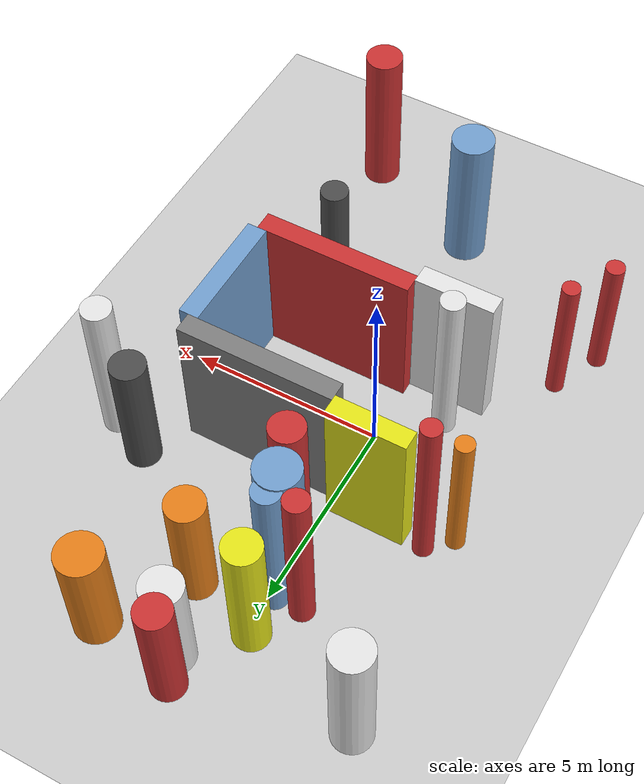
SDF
<?xml version='1.0'?>
<sdf version='1.6'>
  <world name='routeA_rl_v1__dense_recovery__rl_train__cul_de_sac_trap__000074'>
    <!-- Sun light -->
    <light name='sun' type='directional'>
      <cast_shadows>1</cast_shadows>
      <pose>0 0 10 0 0 0</pose>
      <diffuse>0.8 0.8 0.8 1</diffuse>
      <specular>0.2 0.2 0.2 1</specular>
      <attenuation>
        <range>1000</range>
        <constant>0.9</constant>
        <linear>0.01</linear>
        <quadratic>0.001</quadratic>
      </attenuation>
      <direction>-0.5 0.1 -0.9</direction>
    </light>

    <!-- Ground plane -->
    <model name='ground_plane'>
      <static>1</static>
      <link name='link'>
        <collision name='collision'>
          <geometry>
            <plane>
              <normal>0 0 1</normal>
              <size>100 100</size>
            </plane>
          </geometry>
          <surface>
            <contact>
              <collide_bitmask>65535</collide_bitmask>
              <ode/>
            </contact>
            <friction>
              <ode>
                <mu>100</mu>
                <mu2>50</mu2>
              </ode>
              <torsional><ode/></torsional>
            </friction>
            <bounce/>
          </surface>
          <max_contacts>10</max_contacts>
        </collision>
        <visual name='visual'>
          <cast_shadows>0</cast_shadows>
          <geometry>
            <plane>
              <normal>0 0 1</normal>
              <size>100 100</size>
            </plane>
          </geometry>
          <material>
            <script>
              <uri>file://media/materials/scripts/gazebo.material</uri>
              <n>Gazebo/Grey</n>
            </script>
          </material>
        </visual>
      </link>
    </model>

    <!-- Environment -->
    <magnetic_field>6e-06 2.3e-05 -4.2e-05</magnetic_field>
    <atmosphere type='adiabatic'/>
    <physics name='default_physics' default='0' type='ode'>
      <gravity>0 0 -9.8</gravity>
      <max_step_size>0.004</max_step_size>
      <real_time_factor>1</real_time_factor>
      <real_time_update_rate>250</real_time_update_rate>
    </physics>
    <scene>
      <ambient>0.4 0.4 0.4 1</ambient>
      <background>0.7 0.7 0.7 1</background>
      <shadows>1</shadows>
    </scene>
    <wind/>
    <spherical_coordinates>
      <surface_model>EARTH_WGS84</surface_model>
      <latitude_deg>0</latitude_deg>
      <longitude_deg>0</longitude_deg>
      <elevation>0</elevation>
      <heading_deg>0</heading_deg>
    </spherical_coordinates>

    <!-- ============ OBSTACLES (26) ============ -->
    <model name='trap_side_l'>
      <static>1</static>
      <link name='link'>
        <visual name='visual'>
          <geometry>
            <box>
              <size>4.0000 0.5000 4.0000</size>
            </box>
          </geometry>
          <material>
            <script>
              <n>Gazebo/Red</n>
              <uri>file://media/materials/scripts/gazebo.material</uri>
            </script>
            <ambient>0.8 0.2 0.2 1</ambient>
          </material>
        </visual>
        <collision name='collision'>
          <geometry>
            <box>
              <size>4.0000 0.5000 4.0000</size>
            </box>
          </geometry>
          <max_contacts>10</max_contacts>
          <surface>
            <contact><ode/></contact>
            <bounce/>
            <friction>
              <ode><mu>1</mu><mu2>1</mu2></ode>
              <torsional><ode/></torsional>
            </friction>
          </surface>
        </collision>
      </link>
      <pose>2.0000 -1.7500 2.0000 0 0 0.0000</pose>
    </model>

    <model name='trap_side_r'>
      <static>1</static>
      <link name='link'>
        <visual name='visual'>
          <geometry>
            <box>
              <size>4.0000 0.5000 4.0000</size>
            </box>
          </geometry>
          <material>
            <script>
              <n>Gazebo/Grey</n>
              <uri>file://media/materials/scripts/gazebo.material</uri>
            </script>
            <ambient>0.5 0.5 0.5 1</ambient>
          </material>
        </visual>
        <collision name='collision'>
          <geometry>
            <box>
              <size>4.0000 0.5000 4.0000</size>
            </box>
          </geometry>
          <max_contacts>10</max_contacts>
          <surface>
            <contact><ode/></contact>
            <bounce/>
            <friction>
              <ode><mu>1</mu><mu2>1</mu2></ode>
              <torsional><ode/></torsional>
            </friction>
          </surface>
        </collision>
      </link>
      <pose>2.0000 1.7500 2.0000 0 0 0.0000</pose>
    </model>

    <model name='trap_back'>
      <static>1</static>
      <link name='link'>
        <visual name='visual'>
          <geometry>
            <box>
              <size>0.5000 3.0000 4.0000</size>
            </box>
          </geometry>
          <material>
            <script>
              <n>Gazebo/Blue</n>
              <uri>file://media/materials/scripts/gazebo.material</uri>
            </script>
            <ambient>0.447 0.624 0.812 1</ambient>
          </material>
        </visual>
        <collision name='collision'>
          <geometry>
            <box>
              <size>0.5000 3.0000 4.0000</size>
            </box>
          </geometry>
          <max_contacts>10</max_contacts>
          <surface>
            <contact><ode/></contact>
            <bounce/>
            <friction>
              <ode><mu>1</mu><mu2>1</mu2></ode>
              <torsional><ode/></torsional>
            </friction>
          </surface>
        </collision>
      </link>
      <pose>4.0000 0.0000 2.0000 0 0 0.0000</pose>
    </model>

    <model name='trap_funnel_l'>
      <static>1</static>
      <link name='link'>
        <visual name='visual'>
          <geometry>
            <box>
              <size>2.0000 0.5000 4.0000</size>
            </box>
          </geometry>
          <material>
            <script>
              <n>Gazebo/White</n>
              <uri>file://media/materials/scripts/gazebo.material</uri>
            </script>
            <ambient>0.9 0.9 0.9 1</ambient>
          </material>
        </visual>
        <collision name='collision'>
          <geometry>
            <box>
              <size>2.0000 0.5000 4.0000</size>
            </box>
          </geometry>
          <max_contacts>10</max_contacts>
          <surface>
            <contact><ode/></contact>
            <bounce/>
            <friction>
              <ode><mu>1</mu><mu2>1</mu2></ode>
              <torsional><ode/></torsional>
            </friction>
          </surface>
        </collision>
      </link>
      <pose>-1.0000 -2.1000 2.0000 0 0 0.0000</pose>
    </model>

    <model name='trap_funnel_r'>
      <static>1</static>
      <link name='link'>
        <visual name='visual'>
          <geometry>
            <box>
              <size>2.0000 0.5000 4.0000</size>
            </box>
          </geometry>
          <material>
            <script>
              <n>Gazebo/Yellow</n>
              <uri>file://media/materials/scripts/gazebo.material</uri>
            </script>
            <ambient>0.9 0.9 0.1 1</ambient>
          </material>
        </visual>
        <collision name='collision'>
          <geometry>
            <box>
              <size>2.0000 0.5000 4.0000</size>
            </box>
          </geometry>
          <max_contacts>10</max_contacts>
          <surface>
            <contact><ode/></contact>
            <bounce/>
            <friction>
              <ode><mu>1</mu><mu2>1</mu2></ode>
              <torsional><ode/></torsional>
            </friction>
          </surface>
        </collision>
      </link>
      <pose>-1.0000 2.1000 2.0000 0 0 0.0000</pose>
    </model>

    <model name='trap_scatter_0'>
      <static>1</static>
      <link name='link'>
        <visual name='visual'>
          <geometry>
            <cylinder>
              <radius>0.2534</radius>
              <length>4.8954</length>
            </cylinder>
          </geometry>
          <material>
            <script>
              <n>Gazebo/Red</n>
              <uri>file://media/materials/scripts/gazebo.material</uri>
            </script>
            <ambient>0.8 0.2 0.2 1</ambient>
          </material>
        </visual>
        <collision name='collision'>
          <geometry>
            <cylinder>
              <radius>0.2534</radius>
              <length>4.8954</length>
            </cylinder>
          </geometry>
          <max_contacts>10</max_contacts>
          <surface>
            <contact><ode/></contact>
            <bounce/>
            <friction>
              <ode><mu>1</mu><mu2>1</mu2></ode>
              <torsional><ode/></torsional>
            </friction>
          </surface>
        </collision>
      </link>
      <pose>-2.4567 2.1615 2.4477 0 0 0.0000</pose>
    </model>

    <model name='trap_scatter_1'>
      <static>1</static>
      <link name='link'>
        <visual name='visual'>
          <geometry>
            <cylinder>
              <radius>0.4457</radius>
              <length>3.6659</length>
            </cylinder>
          </geometry>
          <material>
            <script>
              <n>Gazebo/Red</n>
              <uri>file://media/materials/scripts/gazebo.material</uri>
            </script>
            <ambient>0.8 0.2 0.2 1</ambient>
          </material>
        </visual>
        <collision name='collision'>
          <geometry>
            <cylinder>
              <radius>0.4457</radius>
              <length>3.6659</length>
            </cylinder>
          </geometry>
          <max_contacts>10</max_contacts>
          <surface>
            <contact><ode/></contact>
            <bounce/>
            <friction>
              <ode><mu>1</mu><mu2>1</mu2></ode>
              <torsional><ode/></torsional>
            </friction>
          </surface>
        </collision>
      </link>
      <pose>0.6173 2.8853 1.8329 0 0 0.0000</pose>
    </model>

    <model name='trap_scatter_2'>
      <static>1</static>
      <link name='link'>
        <visual name='visual'>
          <geometry>
            <cylinder>
              <radius>0.4434</radius>
              <length>3.5113</length>
            </cylinder>
          </geometry>
          <material>
            <script>
              <n>Gazebo/DarkGrey</n>
              <uri>file://media/materials/scripts/gazebo.material</uri>
            </script>
            <ambient>0.3 0.3 0.3 1</ambient>
          </material>
        </visual>
        <collision name='collision'>
          <geometry>
            <cylinder>
              <radius>0.4434</radius>
              <length>3.5113</length>
            </cylinder>
          </geometry>
          <max_contacts>10</max_contacts>
          <surface>
            <contact><ode/></contact>
            <bounce/>
            <friction>
              <ode><mu>1</mu><mu2>1</mu2></ode>
              <torsional><ode/></torsional>
            </friction>
          </surface>
        </collision>
      </link>
      <pose>4.6491 3.0811 1.7556 0 0 0.0000</pose>
    </model>

    <model name='trap_scatter_4'>
      <static>1</static>
      <link name='link'>
        <visual name='visual'>
          <geometry>
            <cylinder>
              <radius>0.4997</radius>
              <length>3.9068</length>
            </cylinder>
          </geometry>
          <material>
            <script>
              <n>Gazebo/White</n>
              <uri>file://media/materials/scripts/gazebo.material</uri>
            </script>
            <ambient>0.9 0.9 0.9 1</ambient>
          </material>
        </visual>
        <collision name='collision'>
          <geometry>
            <cylinder>
              <radius>0.4997</radius>
              <length>3.9068</length>
            </cylinder>
          </geometry>
          <max_contacts>10</max_contacts>
          <surface>
            <contact><ode/></contact>
            <bounce/>
            <friction>
              <ode><mu>1</mu><mu2>1</mu2></ode>
              <torsional><ode/></torsional>
            </friction>
          </surface>
        </collision>
      </link>
      <pose>-3.2336 6.9215 1.9534 0 0 0.0000</pose>
    </model>

    <model name='trap_scatter_5'>
      <static>1</static>
      <link name='link'>
        <visual name='visual'>
          <geometry>
            <cylinder>
              <radius>0.3459</radius>
              <length>4.4681</length>
            </cylinder>
          </geometry>
          <material>
            <script>
              <n>Gazebo/Blue</n>
              <uri>file://media/materials/scripts/gazebo.material</uri>
            </script>
            <ambient>0.447 0.624 0.812 1</ambient>
          </material>
        </visual>
        <collision name='collision'>
          <geometry>
            <cylinder>
              <radius>0.3459</radius>
              <length>4.4681</length>
            </cylinder>
          </geometry>
          <max_contacts>10</max_contacts>
          <surface>
            <contact><ode/></contact>
            <bounce/>
            <friction>
              <ode><mu>1</mu><mu2>1</mu2></ode>
              <torsional><ode/></torsional>
            </friction>
          </surface>
        </collision>
      </link>
      <pose>-0.1187 4.9088 2.2340 0 0 0.0000</pose>
    </model>

    <model name='trap_scatter_6'>
      <static>1</static>
      <link name='link'>
        <visual name='visual'>
          <geometry>
            <cylinder>
              <radius>0.3754</radius>
              <length>4.3502</length>
            </cylinder>
          </geometry>
          <material>
            <script>
              <n>Gazebo/White</n>
              <uri>file://media/materials/scripts/gazebo.material</uri>
            </script>
            <ambient>0.9 0.9 0.9 1</ambient>
          </material>
        </visual>
        <collision name='collision'>
          <geometry>
            <cylinder>
              <radius>0.3754</radius>
              <length>4.3502</length>
            </cylinder>
          </geometry>
          <max_contacts>10</max_contacts>
          <surface>
            <contact><ode/></contact>
            <bounce/>
            <friction>
              <ode><mu>1</mu><mu2>1</mu2></ode>
              <torsional><ode/></torsional>
            </friction>
          </surface>
        </collision>
      </link>
      <pose>5.7131 2.5837 2.1751 0 0 0.0000</pose>
    </model>

    <model name='trap_scatter_8'>
      <static>1</static>
      <link name='link'>
        <visual name='visual'>
          <geometry>
            <cylinder>
              <radius>0.2345</radius>
              <length>4.0217</length>
            </cylinder>
          </geometry>
          <material>
            <script>
              <n>Gazebo/Orange</n>
              <uri>file://media/materials/scripts/gazebo.material</uri>
            </script>
            <ambient>0.9 0.5 0.1 1</ambient>
          </material>
        </visual>
        <collision name='collision'>
          <geometry>
            <cylinder>
              <radius>0.2345</radius>
              <length>4.0217</length>
            </cylinder>
          </geometry>
          <max_contacts>10</max_contacts>
          <surface>
            <contact><ode/></contact>
            <bounce/>
            <friction>
              <ode><mu>1</mu><mu2>1</mu2></ode>
              <torsional><ode/></torsional>
            </friction>
          </surface>
        </collision>
      </link>
      <pose>-3.0285 1.6366 2.0108 0 0 0.0000</pose>
    </model>

    <model name='trap_scatter_9'>
      <static>1</static>
      <link name='link'>
        <visual name='visual'>
          <geometry>
            <cylinder>
              <radius>0.5450</radius>
              <length>3.9310</length>
            </cylinder>
          </geometry>
          <material>
            <script>
              <n>Gazebo/Blue</n>
              <uri>file://media/materials/scripts/gazebo.material</uri>
            </script>
            <ambient>0.447 0.624 0.812 1</ambient>
          </material>
        </visual>
        <collision name='collision'>
          <geometry>
            <cylinder>
              <radius>0.5450</radius>
              <length>3.9310</length>
            </cylinder>
          </geometry>
          <max_contacts>10</max_contacts>
          <surface>
            <contact><ode/></contact>
            <bounce/>
            <friction>
              <ode><mu>1</mu><mu2>1</mu2></ode>
              <torsional><ode/></torsional>
            </friction>
          </surface>
        </collision>
      </link>
      <pose>0.8737 -6.6522 1.9655 0 0 0.0000</pose>
    </model>

    <model name='trap_scatter_10'>
      <static>1</static>
      <link name='link'>
        <visual name='visual'>
          <geometry>
            <cylinder>
              <radius>0.4761</radius>
              <length>4.1717</length>
            </cylinder>
          </geometry>
          <material>
            <script>
              <n>Gazebo/Red</n>
              <uri>file://media/materials/scripts/gazebo.material</uri>
            </script>
            <ambient>0.8 0.2 0.2 1</ambient>
          </material>
        </visual>
        <collision name='collision'>
          <geometry>
            <cylinder>
              <radius>0.4761</radius>
              <length>4.1717</length>
            </cylinder>
          </geometry>
          <max_contacts>10</max_contacts>
          <surface>
            <contact><ode/></contact>
            <bounce/>
            <friction>
              <ode><mu>1</mu><mu2>1</mu2></ode>
              <torsional><ode/></torsional>
            </friction>
          </surface>
        </collision>
      </link>
      <pose>4.0979 -7.9911 2.0858 0 0 0.0000</pose>
    </model>

    <model name='trap_scatter_11'>
      <static>1</static>
      <link name='link'>
        <visual name='visual'>
          <geometry>
            <cylinder>
              <radius>0.4771</radius>
              <length>3.3694</length>
            </cylinder>
          </geometry>
          <material>
            <script>
              <n>Gazebo/Orange</n>
              <uri>file://media/materials/scripts/gazebo.material</uri>
            </script>
            <ambient>0.9 0.5 0.1 1</ambient>
          </material>
        </visual>
        <collision name='collision'>
          <geometry>
            <cylinder>
              <radius>0.4771</radius>
              <length>3.3694</length>
            </cylinder>
          </geometry>
          <max_contacts>10</max_contacts>
          <surface>
            <contact><ode/></contact>
            <bounce/>
            <friction>
              <ode><mu>1</mu><mu2>1</mu2></ode>
              <torsional><ode/></torsional>
            </friction>
          </surface>
        </collision>
      </link>
      <pose>1.6122 5.4455 1.6847 0 0 0.0000</pose>
    </model>

    <model name='trap_scatter_12'>
      <static>1</static>
      <link name='link'>
        <visual name='visual'>
          <geometry>
            <cylinder>
              <radius>0.3003</radius>
              <length>4.7213</length>
            </cylinder>
          </geometry>
          <material>
            <script>
              <n>Gazebo/White</n>
              <uri>file://media/materials/scripts/gazebo.material</uri>
            </script>
            <ambient>0.9 0.9 0.9 1</ambient>
          </material>
        </visual>
        <collision name='collision'>
          <geometry>
            <cylinder>
              <radius>0.3003</radius>
              <length>4.7213</length>
            </cylinder>
          </geometry>
          <max_contacts>10</max_contacts>
          <surface>
            <contact><ode/></contact>
            <bounce/>
            <friction>
              <ode><mu>1</mu><mu2>1</mu2></ode>
              <torsional><ode/></torsional>
            </friction>
          </surface>
        </collision>
      </link>
      <pose>-1.2691 -1.1979 2.3606 0 0 0.0000</pose>
    </model>

    <model name='trap_scatter_13'>
      <static>1</static>
      <link name='link'>
        <visual name='visual'>
          <geometry>
            <cylinder>
              <radius>0.3509</radius>
              <length>3.6257</length>
            </cylinder>
          </geometry>
          <material>
            <script>
              <n>Gazebo/DarkGrey</n>
              <uri>file://media/materials/scripts/gazebo.material</uri>
            </script>
            <ambient>0.3 0.3 0.3 1</ambient>
          </material>
        </visual>
        <collision name='collision'>
          <geometry>
            <cylinder>
              <radius>0.3509</radius>
              <length>3.6257</length>
            </cylinder>
          </geometry>
          <max_contacts>10</max_contacts>
          <surface>
            <contact><ode/></contact>
            <bounce/>
            <friction>
              <ode><mu>1</mu><mu2>1</mu2></ode>
              <torsional><ode/></torsional>
            </friction>
          </surface>
        </collision>
      </link>
      <pose>3.1678 -3.7133 1.8128 0 0 0.0000</pose>
    </model>

    <model name='trap_scatter_14'>
      <static>1</static>
      <link name='link'>
        <visual name='visual'>
          <geometry>
            <cylinder>
              <radius>0.4616</radius>
              <length>3.8292</length>
            </cylinder>
          </geometry>
          <material>
            <script>
              <n>Gazebo/Yellow</n>
              <uri>file://media/materials/scripts/gazebo.material</uri>
            </script>
            <ambient>0.9 0.9 0.1 1</ambient>
          </material>
        </visual>
        <collision name='collision'>
          <geometry>
            <cylinder>
              <radius>0.4616</radius>
              <length>3.8292</length>
            </cylinder>
          </geometry>
          <max_contacts>10</max_contacts>
          <surface>
            <contact><ode/></contact>
            <bounce/>
            <friction>
              <ode><mu>1</mu><mu2>1</mu2></ode>
              <torsional><ode/></torsional>
            </friction>
          </surface>
        </collision>
      </link>
      <pose>-0.1412 5.9578 1.9146 0 0 0.0000</pose>
    </model>

    <model name='trap_scatter_15'>
      <static>1</static>
      <link name='link'>
        <visual name='visual'>
          <geometry>
            <cylinder>
              <radius>0.3090</radius>
              <length>4.6489</length>
            </cylinder>
          </geometry>
          <material>
            <script>
              <n>Gazebo/Red</n>
              <uri>file://media/materials/scripts/gazebo.material</uri>
            </script>
            <ambient>0.8 0.2 0.2 1</ambient>
          </material>
        </visual>
        <collision name='collision'>
          <geometry>
            <cylinder>
              <radius>0.3090</radius>
              <length>4.6489</length>
            </cylinder>
          </geometry>
          <max_contacts>10</max_contacts>
          <surface>
            <contact><ode/></contact>
            <bounce/>
            <friction>
              <ode><mu>1</mu><mu2>1</mu2></ode>
              <torsional><ode/></torsional>
            </friction>
          </surface>
        </collision>
      </link>
      <pose>-0.8310 4.9075 2.3245 0 0 0.0000</pose>
    </model>

    <model name='trap_scatter_17'>
      <static>1</static>
      <link name='link'>
        <visual name='visual'>
          <geometry>
            <cylinder>
              <radius>0.4370</radius>
              <length>3.3546</length>
            </cylinder>
          </geometry>
          <material>
            <script>
              <n>Gazebo/Red</n>
              <uri>file://media/materials/scripts/gazebo.material</uri>
            </script>
            <ambient>0.8 0.2 0.2 1</ambient>
          </material>
        </visual>
        <collision name='collision'>
          <geometry>
            <cylinder>
              <radius>0.4370</radius>
              <length>3.3546</length>
            </cylinder>
          </geometry>
          <max_contacts>10</max_contacts>
          <surface>
            <contact><ode/></contact>
            <bounce/>
            <friction>
              <ode><mu>1</mu><mu2>1</mu2></ode>
              <torsional><ode/></torsional>
            </friction>
          </surface>
        </collision>
      </link>
      <pose>0.8079 7.8719 1.6773 0 0 0.0000</pose>
    </model>

    <model name='trap_scatter_18'>
      <static>1</static>
      <link name='link'>
        <visual name='visual'>
          <geometry>
            <cylinder>
              <radius>0.2286</radius>
              <length>3.7671</length>
            </cylinder>
          </geometry>
          <material>
            <script>
              <n>Gazebo/Red</n>
              <uri>file://media/materials/scripts/gazebo.material</uri>
            </script>
            <ambient>0.8 0.2 0.2 1</ambient>
          </material>
        </visual>
        <collision name='collision'>
          <geometry>
            <cylinder>
              <radius>0.2286</radius>
              <length>3.7671</length>
            </cylinder>
          </geometry>
          <max_contacts>10</max_contacts>
          <surface>
            <contact><ode/></contact>
            <bounce/>
            <friction>
              <ode><mu>1</mu><mu2>1</mu2></ode>
              <torsional><ode/></torsional>
            </friction>
          </surface>
        </collision>
      </link>
      <pose>-3.1739 -3.5763 1.8836 0 0 0.0000</pose>
    </model>

    <model name='trap_scatter_19'>
      <static>1</static>
      <link name='link'>
        <visual name='visual'>
          <geometry>
            <cylinder>
              <radius>0.2385</radius>
              <length>3.5716</length>
            </cylinder>
          </geometry>
          <material>
            <script>
              <n>Gazebo/Red</n>
              <uri>file://media/materials/scripts/gazebo.material</uri>
            </script>
            <ambient>0.8 0.2 0.2 1</ambient>
          </material>
        </visual>
        <collision name='collision'>
          <geometry>
            <cylinder>
              <radius>0.2385</radius>
              <length>3.5716</length>
            </cylinder>
          </geometry>
          <max_contacts>10</max_contacts>
          <surface>
            <contact><ode/></contact>
            <bounce/>
            <friction>
              <ode><mu>1</mu><mu2>1</mu2></ode>
              <torsional><ode/></torsional>
            </friction>
          </surface>
        </collision>
      </link>
      <pose>-3.7737 -4.8157 1.7858 0 0 0.0000</pose>
    </model>

    <model name='trap_scatter_20'>
      <static>1</static>
      <link name='link'>
        <visual name='visual'>
          <geometry>
            <cylinder>
              <radius>0.5075</radius>
              <length>3.1249</length>
            </cylinder>
          </geometry>
          <material>
            <script>
              <n>Gazebo/White</n>
              <uri>file://media/materials/scripts/gazebo.material</uri>
            </script>
            <ambient>0.9 0.9 0.9 1</ambient>
          </material>
        </visual>
        <collision name='collision'>
          <geometry>
            <cylinder>
              <radius>0.5075</radius>
              <length>3.1249</length>
            </cylinder>
          </geometry>
          <max_contacts>10</max_contacts>
          <surface>
            <contact><ode/></contact>
            <bounce/>
            <friction>
              <ode><mu>1</mu><mu2>1</mu2></ode>
              <torsional><ode/></torsional>
            </friction>
          </surface>
        </collision>
      </link>
      <pose>1.0673 7.2245 1.5625 0 0 0.0000</pose>
    </model>

    <model name='trap_scatter_21'>
      <static>1</static>
      <link name='link'>
        <visual name='visual'>
          <geometry>
            <cylinder>
              <radius>0.5640</radius>
              <length>3.0430</length>
            </cylinder>
          </geometry>
          <material>
            <script>
              <n>Gazebo/Orange</n>
              <uri>file://media/materials/scripts/gazebo.material</uri>
            </script>
            <ambient>0.9 0.5 0.1 1</ambient>
          </material>
        </visual>
        <collision name='collision'>
          <geometry>
            <cylinder>
              <radius>0.5640</radius>
              <length>3.0430</length>
            </cylinder>
          </geometry>
          <max_contacts>10</max_contacts>
          <surface>
            <contact><ode/></contact>
            <bounce/>
            <friction>
              <ode><mu>1</mu><mu2>1</mu2></ode>
              <torsional><ode/></torsional>
            </friction>
          </surface>
        </collision>
      </link>
      <pose>3.0154 7.3840 1.5215 0 0 0.0000</pose>
    </model>

    <model name='trap_scatter_22'>
      <static>1</static>
      <link name='link'>
        <visual name='visual'>
          <geometry>
            <cylinder>
              <radius>0.3011</radius>
              <length>3.3368</length>
            </cylinder>
          </geometry>
          <material>
            <script>
              <n>Gazebo/Yellow</n>
              <uri>file://media/materials/scripts/gazebo.material</uri>
            </script>
            <ambient>0.9 0.9 0.1 1</ambient>
          </material>
        </visual>
        <collision name='collision'>
          <geometry>
            <cylinder>
              <radius>0.3011</radius>
              <length>3.3368</length>
            </cylinder>
          </geometry>
          <max_contacts>10</max_contacts>
          <surface>
            <contact><ode/></contact>
            <bounce/>
            <friction>
              <ode><mu>1</mu><mu2>1</mu2></ode>
              <torsional><ode/></torsional>
            </friction>
          </surface>
        </collision>
      </link>
      <pose>3.9260 -1.9442 1.6684 0 0 0.0000</pose>
    </model>

    <model name='trap_scatter_23'>
      <static>1</static>
      <link name='link'>
        <visual name='visual'>
          <geometry>
            <cylinder>
              <radius>0.5492</radius>
              <length>4.5120</length>
            </cylinder>
          </geometry>
          <material>
            <script>
              <n>Gazebo/Blue</n>
              <uri>file://media/materials/scripts/gazebo.material</uri>
            </script>
            <ambient>0.447 0.624 0.812 1</ambient>
          </material>
        </visual>
        <collision name='collision'>
          <geometry>
            <cylinder>
              <radius>0.5492</radius>
              <length>4.5120</length>
            </cylinder>
          </geometry>
          <max_contacts>10</max_contacts>
          <surface>
            <contact><ode/></contact>
            <bounce/>
            <friction>
              <ode><mu>1</mu><mu2>1</mu2></ode>
              <torsional><ode/></torsional>
            </friction>
          </surface>
        </collision>
      </link>
      <pose>-0.0562 4.3523 2.2560 0 0 0.0000</pose>
    </model>

    <!-- GUI camera -->
    <gui fullscreen='0'>
      <camera name='user_camera'>
        <pose>-15 0 18 0 0.85 0.15</pose>
        <view_controller>orbit</view_controller>
        <projection_type>perspective</projection_type>
      </camera>
    </gui>
  </world>
</sdf>
